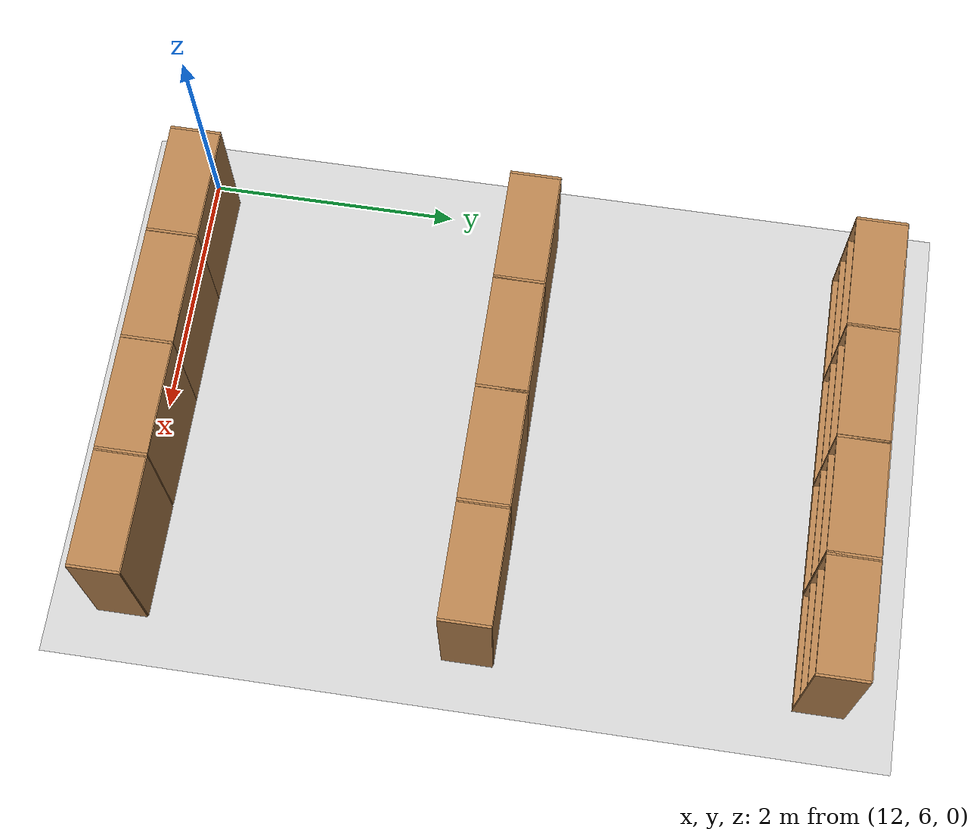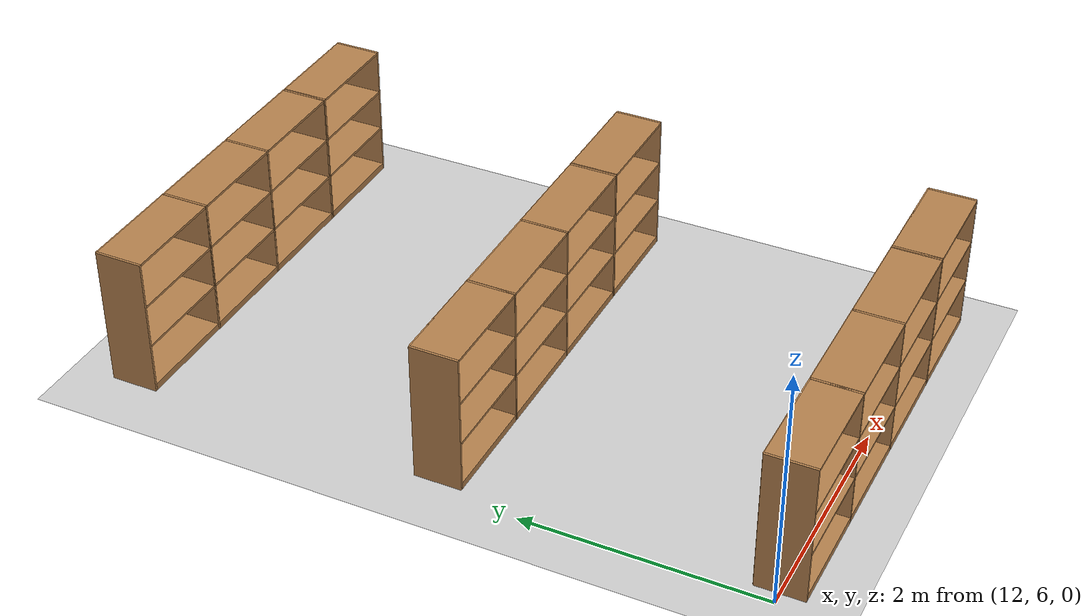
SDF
<sdf version="1.6">
 <world name="default">
  <model name="ground_plane">
   <static>1</static>
   <link name="link">
    <collision name="collision">
     <geometry><plane><normal>0 0 1</normal><size>100 100</size></plane></geometry>
     <surface><friction><ode><mu>100</mu><mu2>50</mu2></ode></friction></surface>
    </collision>
    <visual name="visual">
     <cast_shadows>0</cast_shadows>
     <geometry><plane><normal>0 0 1</normal><size>100 100</size></plane></geometry>
     <material>
      <script><uri>file://media/materials/scripts/gazebo.material</uri><name>Gazebo/Grey</name></script>
     </material>
    </visual>
   </link>
  </model>
  <model name="Bookself-4_clone_10">
   <model name="Bookself-3">
    <model name="bookshelf_0">
     <static>1</static>
     <link name="link">
      <inertial><mass>1</mass></inertial>
      <collision name="back">
       <pose>0 0.005 0.6 0 -0 0</pose>
       <geometry><box><size>0.9 0.01 1.2</size></box></geometry>
      </collision>
      <visual name="visual1">
       <pose>0 0.005 0.6 0 -0 0</pose>
       <geometry><box><size>0.9 0.01 1.2</size></box></geometry>
       <material>
        <script><uri>file://media/materials/scripts/gazebo.material</uri><name>Gazebo/Wood</name></script>
       </material>
      </visual>
      <collision name="left_side">
       <pose>0.45 -0.195 0.6 0 -0 0</pose>
       <geometry><box><size>0.02 0.4 1.2</size></box></geometry>
      </collision>
      <visual name="visual2">
       <pose>0.45 -0.195 0.6 0 -0 0</pose>
       <geometry><box><size>0.02 0.4 1.2</size></box></geometry>
       <material>
        <script><uri>file://media/materials/scripts/gazebo.material</uri><name>Gazebo/Wood</name></script>
       </material>
      </visual>
      <collision name="right_side">
       <pose>-0.45 -0.195 0.6 0 -0 0</pose>
       <geometry><box><size>0.02 0.4 1.2</size></box></geometry>
      </collision>
      <visual name="visual3">
       <pose>-0.45 -0.195 0.6 0 -0 0</pose>
       <geometry><box><size>0.02 0.4 1.2</size></box></geometry>
       <material>
        <script><uri>file://media/materials/scripts/gazebo.material</uri><name>Gazebo/Wood</name></script>
       </material>
      </visual>
      <collision name="bottom">
       <pose>0 -0.195 0.03 0 -0 0</pose>
       <geometry><box><size>0.88 0.4 0.06</size></box></geometry>
      </collision>
      <visual name="visual4">
       <pose>0 -0.195 0.03 0 -0 0</pose>
       <geometry><box><size>0.88 0.4 0.06</size></box></geometry>
       <material>
        <script><uri>file://media/materials/scripts/gazebo.material</uri><name>Gazebo/Wood</name></script>
       </material>
      </visual>
      <collision name="top">
       <pose>0 -0.195 1.19 0 -0 0</pose>
       <geometry><box><size>0.88 0.4 0.02</size></box></geometry>
      </collision>
      <visual name="visual5">
       <pose>0 -0.195 1.19 0 -0 0</pose>
       <geometry><box><size>0.88 0.4 0.02</size></box></geometry>
       <material>
        <script><uri>file://media/materials/scripts/gazebo.material</uri><name>Gazebo/Wood</name></script>
       </material>
      </visual>
      <collision name="low_shelf">
       <pose>0 -0.195 0.43 0 -0 0</pose>
       <geometry><box><size>0.88 0.4 0.02</size></box></geometry>
      </collision>
      <visual name="visual6">
       <pose>0 -0.195 0.43 0 -0 0</pose>
       <geometry><box><size>0.88 0.4 0.02</size></box></geometry>
       <material>
        <script><uri>file://media/materials/scripts/gazebo.material</uri><name>Gazebo/Wood</name></script>
       </material>
      </visual>
      <collision name="high_shelf">
       <pose>0 -0.195 0.8 0 -0 0</pose>
       <geometry><box><size>0.88 0.4 0.02</size></box></geometry>
      </collision>
      <visual name="visual7">
       <pose>0 -0.195 0.8 0 -0 0</pose>
       <geometry><box><size>0.88 0.4 0.02</size></box></geometry>
       <material>
        <script><uri>file://media/materials/scripts/gazebo.material</uri><name>Gazebo/Wood</name></script>
       </material>
      </visual>
     </link>
     <pose>-0.903039 0 0 0 -0 0</pose>
    </model>
    <model name="bookshelf_1">
     <static>1</static>
     <link name="link">
      <inertial><mass>1</mass></inertial>
      <collision name="back">
       <pose>0 0.005 0.6 0 -0 0</pose>
       <geometry><box><size>0.9 0.01 1.2</size></box></geometry>
      </collision>
      <visual name="visual1">
       <pose>0 0.005 0.6 0 -0 0</pose>
       <geometry><box><size>0.9 0.01 1.2</size></box></geometry>
       <material>
        <script><uri>file://media/materials/scripts/gazebo.material</uri><name>Gazebo/Wood</name></script>
       </material>
      </visual>
      <collision name="left_side">
       <pose>0.45 -0.195 0.6 0 -0 0</pose>
       <geometry><box><size>0.02 0.4 1.2</size></box></geometry>
      </collision>
      <visual name="visual2">
       <pose>0.45 -0.195 0.6 0 -0 0</pose>
       <geometry><box><size>0.02 0.4 1.2</size></box></geometry>
       <material>
        <script><uri>file://media/materials/scripts/gazebo.material</uri><name>Gazebo/Wood</name></script>
       </material>
      </visual>
      <collision name="right_side">
       <pose>-0.45 -0.195 0.6 0 -0 0</pose>
       <geometry><box><size>0.02 0.4 1.2</size></box></geometry>
      </collision>
      <visual name="visual3">
       <pose>-0.45 -0.195 0.6 0 -0 0</pose>
       <geometry><box><size>0.02 0.4 1.2</size></box></geometry>
       <material>
        <script><uri>file://media/materials/scripts/gazebo.material</uri><name>Gazebo/Wood</name></script>
       </material>
      </visual>
      <collision name="bottom">
       <pose>0 -0.195 0.03 0 -0 0</pose>
       <geometry><box><size>0.88 0.4 0.06</size></box></geometry>
      </collision>
      <visual name="visual4">
       <pose>0 -0.195 0.03 0 -0 0</pose>
       <geometry><box><size>0.88 0.4 0.06</size></box></geometry>
       <material>
        <script><uri>file://media/materials/scripts/gazebo.material</uri><name>Gazebo/Wood</name></script>
       </material>
      </visual>
      <collision name="top">
       <pose>0 -0.195 1.19 0 -0 0</pose>
       <geometry><box><size>0.88 0.4 0.02</size></box></geometry>
      </collision>
      <visual name="visual5">
       <pose>0 -0.195 1.19 0 -0 0</pose>
       <geometry><box><size>0.88 0.4 0.02</size></box></geometry>
       <material>
        <script><uri>file://media/materials/scripts/gazebo.material</uri><name>Gazebo/Wood</name></script>
       </material>
      </visual>
      <collision name="low_shelf">
       <pose>0 -0.195 0.43 0 -0 0</pose>
       <geometry><box><size>0.88 0.4 0.02</size></box></geometry>
      </collision>
      <visual name="visual6">
       <pose>0 -0.195 0.43 0 -0 0</pose>
       <geometry><box><size>0.88 0.4 0.02</size></box></geometry>
       <material>
        <script><uri>file://media/materials/scripts/gazebo.material</uri><name>Gazebo/Wood</name></script>
       </material>
      </visual>
      <collision name="high_shelf">
       <pose>0 -0.195 0.8 0 -0 0</pose>
       <geometry><box><size>0.88 0.4 0.02</size></box></geometry>
      </collision>
      <visual name="visual7">
       <pose>0 -0.195 0.8 0 -0 0</pose>
       <geometry><box><size>0.88 0.4 0.02</size></box></geometry>
       <material>
        <script><uri>file://media/materials/scripts/gazebo.material</uri><name>Gazebo/Wood</name></script>
       </material>
      </visual>
     </link>
     <pose>0.000535 0 0 0 -0 0</pose>
    </model>
    <model name="bookshelf_1_clone">
     <static>1</static>
     <link name="link">
      <inertial><mass>1</mass></inertial>
      <collision name="back">
       <pose>0 0.005 0.6 0 -0 0</pose>
       <geometry><box><size>0.9 0.01 1.2</size></box></geometry>
      </collision>
      <visual name="visual1">
       <pose>0 0.005 0.6 0 -0 0</pose>
       <geometry><box><size>0.9 0.01 1.2</size></box></geometry>
       <material>
        <script><uri>file://media/materials/scripts/gazebo.material</uri><name>Gazebo/Wood</name></script>
       </material>
      </visual>
      <collision name="left_side">
       <pose>0.45 -0.195 0.6 0 -0 0</pose>
       <geometry><box><size>0.02 0.4 1.2</size></box></geometry>
      </collision>
      <visual name="visual2">
       <pose>0.45 -0.195 0.6 0 -0 0</pose>
       <geometry><box><size>0.02 0.4 1.2</size></box></geometry>
       <material>
        <script><uri>file://media/materials/scripts/gazebo.material</uri><name>Gazebo/Wood</name></script>
       </material>
      </visual>
      <collision name="right_side">
       <pose>-0.45 -0.195 0.6 0 -0 0</pose>
       <geometry><box><size>0.02 0.4 1.2</size></box></geometry>
      </collision>
      <visual name="visual3">
       <pose>-0.45 -0.195 0.6 0 -0 0</pose>
       <geometry><box><size>0.02 0.4 1.2</size></box></geometry>
       <material>
        <script><uri>file://media/materials/scripts/gazebo.material</uri><name>Gazebo/Wood</name></script>
       </material>
      </visual>
      <collision name="bottom">
       <pose>0 -0.195 0.03 0 -0 0</pose>
       <geometry><box><size>0.88 0.4 0.06</size></box></geometry>
      </collision>
      <visual name="visual4">
       <pose>0 -0.195 0.03 0 -0 0</pose>
       <geometry><box><size>0.88 0.4 0.06</size></box></geometry>
       <material>
        <script><uri>file://media/materials/scripts/gazebo.material</uri><name>Gazebo/Wood</name></script>
       </material>
      </visual>
      <collision name="top">
       <pose>0 -0.195 1.19 0 -0 0</pose>
       <geometry><box><size>0.88 0.4 0.02</size></box></geometry>
      </collision>
      <visual name="visual5">
       <pose>0 -0.195 1.19 0 -0 0</pose>
       <geometry><box><size>0.88 0.4 0.02</size></box></geometry>
       <material>
        <script><uri>file://media/materials/scripts/gazebo.material</uri><name>Gazebo/Wood</name></script>
       </material>
      </visual>
      <collision name="low_shelf">
       <pose>0 -0.195 0.43 0 -0 0</pose>
       <geometry><box><size>0.88 0.4 0.02</size></box></geometry>
      </collision>
      <visual name="visual6">
       <pose>0 -0.195 0.43 0 -0 0</pose>
       <geometry><box><size>0.88 0.4 0.02</size></box></geometry>
       <material>
        <script><uri>file://media/materials/scripts/gazebo.material</uri><name>Gazebo/Wood</name></script>
       </material>
      </visual>
      <collision name="high_shelf">
       <pose>0 -0.195 0.8 0 -0 0</pose>
       <geometry><box><size>0.88 0.4 0.02</size></box></geometry>
      </collision>
      <visual name="visual7">
       <pose>0 -0.195 0.8 0 -0 0</pose>
       <geometry><box><size>0.88 0.4 0.02</size></box></geometry>
       <material>
        <script><uri>file://media/materials/scripts/gazebo.material</uri><name>Gazebo/Wood</name></script>
       </material>
      </visual>
     </link>
     <pose>0.902502 0 0 0 -0 0</pose>
    </model>
    <static>1</static>
    <pose>-0.906894 3e-05 0 0 -0 0</pose>
   </model>
   <model name="bookshelf">
    <static>1</static>
    <link name="link">
     <inertial><mass>1</mass></inertial>
     <collision name="back">
      <pose>0 0.005 0.6 0 -0 0</pose>
      <geometry><box><size>0.9 0.01 1.2</size></box></geometry>
     </collision>
     <visual name="visual1">
      <pose>0 0.005 0.6 0 -0 0</pose>
      <geometry><box><size>0.9 0.01 1.2</size></box></geometry>
      <material>
       <script><uri>file://media/materials/scripts/gazebo.material</uri><name>Gazebo/Wood</name></script>
      </material>
     </visual>
     <collision name="left_side">
      <pose>0.45 -0.195 0.6 0 -0 0</pose>
      <geometry><box><size>0.02 0.4 1.2</size></box></geometry>
     </collision>
     <visual name="visual2">
      <pose>0.45 -0.195 0.6 0 -0 0</pose>
      <geometry><box><size>0.02 0.4 1.2</size></box></geometry>
      <material>
       <script><uri>file://media/materials/scripts/gazebo.material</uri><name>Gazebo/Wood</name></script>
      </material>
     </visual>
     <collision name="right_side">
      <pose>-0.45 -0.195 0.6 0 -0 0</pose>
      <geometry><box><size>0.02 0.4 1.2</size></box></geometry>
     </collision>
     <visual name="visual3">
      <pose>-0.45 -0.195 0.6 0 -0 0</pose>
      <geometry><box><size>0.02 0.4 1.2</size></box></geometry>
      <material>
       <script><uri>file://media/materials/scripts/gazebo.material</uri><name>Gazebo/Wood</name></script>
      </material>
     </visual>
     <collision name="bottom">
      <pose>0 -0.195 0.03 0 -0 0</pose>
      <geometry><box><size>0.88 0.4 0.06</size></box></geometry>
     </collision>
     <visual name="visual4">
      <pose>0 -0.195 0.03 0 -0 0</pose>
      <geometry><box><size>0.88 0.4 0.06</size></box></geometry>
      <material>
       <script><uri>file://media/materials/scripts/gazebo.material</uri><name>Gazebo/Wood</name></script>
      </material>
     </visual>
     <collision name="top">
      <pose>0 -0.195 1.19 0 -0 0</pose>
      <geometry><box><size>0.88 0.4 0.02</size></box></geometry>
     </collision>
     <visual name="visual5">
      <pose>0 -0.195 1.19 0 -0 0</pose>
      <geometry><box><size>0.88 0.4 0.02</size></box></geometry>
      <material>
       <script><uri>file://media/materials/scripts/gazebo.material</uri><name>Gazebo/Wood</name></script>
      </material>
     </visual>
     <collision name="low_shelf">
      <pose>0 -0.195 0.43 0 -0 0</pose>
      <geometry><box><size>0.88 0.4 0.02</size></box></geometry>
     </collision>
     <visual name="visual6">
      <pose>0 -0.195 0.43 0 -0 0</pose>
      <geometry><box><size>0.88 0.4 0.02</size></box></geometry>
      <material>
       <script><uri>file://media/materials/scripts/gazebo.material</uri><name>Gazebo/Wood</name></script>
      </material>
     </visual>
     <collision name="high_shelf">
      <pose>0 -0.195 0.8 0 -0 0</pose>
      <geometry><box><size>0.88 0.4 0.02</size></box></geometry>
     </collision>
     <visual name="visual7">
      <pose>0 -0.195 0.8 0 -0 0</pose>
      <geometry><box><size>0.88 0.4 0.02</size></box></geometry>
      <material>
       <script><uri>file://media/materials/scripts/gazebo.material</uri><name>Gazebo/Wood</name></script>
      </material>
     </visual>
    </link>
    <pose>0.906808 3e-05 0 0 -0 0</pose>
   </model>
   <static>0</static>
   <pose>14.3718 11.6044 0 0 -0 0</pose>
  </model>
  <model name="Bookself-4_clone_11">
   <model name="Bookself-3">
    <model name="bookshelf_0">
     <static>1</static>
     <link name="link">
      <inertial><mass>1</mass></inertial>
      <collision name="back">
       <pose>0 0.005 0.6 0 -0 0</pose>
       <geometry><box><size>0.9 0.01 1.2</size></box></geometry>
      </collision>
      <visual name="visual1">
       <pose>0 0.005 0.6 0 -0 0</pose>
       <geometry><box><size>0.9 0.01 1.2</size></box></geometry>
       <material>
        <script><uri>file://media/materials/scripts/gazebo.material</uri><name>Gazebo/Wood</name></script>
       </material>
      </visual>
      <collision name="left_side">
       <pose>0.45 -0.195 0.6 0 -0 0</pose>
       <geometry><box><size>0.02 0.4 1.2</size></box></geometry>
      </collision>
      <visual name="visual2">
       <pose>0.45 -0.195 0.6 0 -0 0</pose>
       <geometry><box><size>0.02 0.4 1.2</size></box></geometry>
       <material>
        <script><uri>file://media/materials/scripts/gazebo.material</uri><name>Gazebo/Wood</name></script>
       </material>
      </visual>
      <collision name="right_side">
       <pose>-0.45 -0.195 0.6 0 -0 0</pose>
       <geometry><box><size>0.02 0.4 1.2</size></box></geometry>
      </collision>
      <visual name="visual3">
       <pose>-0.45 -0.195 0.6 0 -0 0</pose>
       <geometry><box><size>0.02 0.4 1.2</size></box></geometry>
       <material>
        <script><uri>file://media/materials/scripts/gazebo.material</uri><name>Gazebo/Wood</name></script>
       </material>
      </visual>
      <collision name="bottom">
       <pose>0 -0.195 0.03 0 -0 0</pose>
       <geometry><box><size>0.88 0.4 0.06</size></box></geometry>
      </collision>
      <visual name="visual4">
       <pose>0 -0.195 0.03 0 -0 0</pose>
       <geometry><box><size>0.88 0.4 0.06</size></box></geometry>
       <material>
        <script><uri>file://media/materials/scripts/gazebo.material</uri><name>Gazebo/Wood</name></script>
       </material>
      </visual>
      <collision name="top">
       <pose>0 -0.195 1.19 0 -0 0</pose>
       <geometry><box><size>0.88 0.4 0.02</size></box></geometry>
      </collision>
      <visual name="visual5">
       <pose>0 -0.195 1.19 0 -0 0</pose>
       <geometry><box><size>0.88 0.4 0.02</size></box></geometry>
       <material>
        <script><uri>file://media/materials/scripts/gazebo.material</uri><name>Gazebo/Wood</name></script>
       </material>
      </visual>
      <collision name="low_shelf">
       <pose>0 -0.195 0.43 0 -0 0</pose>
       <geometry><box><size>0.88 0.4 0.02</size></box></geometry>
      </collision>
      <visual name="visual6">
       <pose>0 -0.195 0.43 0 -0 0</pose>
       <geometry><box><size>0.88 0.4 0.02</size></box></geometry>
       <material>
        <script><uri>file://media/materials/scripts/gazebo.material</uri><name>Gazebo/Wood</name></script>
       </material>
      </visual>
      <collision name="high_shelf">
       <pose>0 -0.195 0.8 0 -0 0</pose>
       <geometry><box><size>0.88 0.4 0.02</size></box></geometry>
      </collision>
      <visual name="visual7">
       <pose>0 -0.195 0.8 0 -0 0</pose>
       <geometry><box><size>0.88 0.4 0.02</size></box></geometry>
       <material>
        <script><uri>file://media/materials/scripts/gazebo.material</uri><name>Gazebo/Wood</name></script>
       </material>
      </visual>
     </link>
     <pose>-0.903039 0 0 0 -0 0</pose>
    </model>
    <model name="bookshelf_1">
     <static>1</static>
     <link name="link">
      <inertial><mass>1</mass></inertial>
      <collision name="back">
       <pose>0 0.005 0.6 0 -0 0</pose>
       <geometry><box><size>0.9 0.01 1.2</size></box></geometry>
      </collision>
      <visual name="visual1">
       <pose>0 0.005 0.6 0 -0 0</pose>
       <geometry><box><size>0.9 0.01 1.2</size></box></geometry>
       <material>
        <script><uri>file://media/materials/scripts/gazebo.material</uri><name>Gazebo/Wood</name></script>
       </material>
      </visual>
      <collision name="left_side">
       <pose>0.45 -0.195 0.6 0 -0 0</pose>
       <geometry><box><size>0.02 0.4 1.2</size></box></geometry>
      </collision>
      <visual name="visual2">
       <pose>0.45 -0.195 0.6 0 -0 0</pose>
       <geometry><box><size>0.02 0.4 1.2</size></box></geometry>
       <material>
        <script><uri>file://media/materials/scripts/gazebo.material</uri><name>Gazebo/Wood</name></script>
       </material>
      </visual>
      <collision name="right_side">
       <pose>-0.45 -0.195 0.6 0 -0 0</pose>
       <geometry><box><size>0.02 0.4 1.2</size></box></geometry>
      </collision>
      <visual name="visual3">
       <pose>-0.45 -0.195 0.6 0 -0 0</pose>
       <geometry><box><size>0.02 0.4 1.2</size></box></geometry>
       <material>
        <script><uri>file://media/materials/scripts/gazebo.material</uri><name>Gazebo/Wood</name></script>
       </material>
      </visual>
      <collision name="bottom">
       <pose>0 -0.195 0.03 0 -0 0</pose>
       <geometry><box><size>0.88 0.4 0.06</size></box></geometry>
      </collision>
      <visual name="visual4">
       <pose>0 -0.195 0.03 0 -0 0</pose>
       <geometry><box><size>0.88 0.4 0.06</size></box></geometry>
       <material>
        <script><uri>file://media/materials/scripts/gazebo.material</uri><name>Gazebo/Wood</name></script>
       </material>
      </visual>
      <collision name="top">
       <pose>0 -0.195 1.19 0 -0 0</pose>
       <geometry><box><size>0.88 0.4 0.02</size></box></geometry>
      </collision>
      <visual name="visual5">
       <pose>0 -0.195 1.19 0 -0 0</pose>
       <geometry><box><size>0.88 0.4 0.02</size></box></geometry>
       <material>
        <script><uri>file://media/materials/scripts/gazebo.material</uri><name>Gazebo/Wood</name></script>
       </material>
      </visual>
      <collision name="low_shelf">
       <pose>0 -0.195 0.43 0 -0 0</pose>
       <geometry><box><size>0.88 0.4 0.02</size></box></geometry>
      </collision>
      <visual name="visual6">
       <pose>0 -0.195 0.43 0 -0 0</pose>
       <geometry><box><size>0.88 0.4 0.02</size></box></geometry>
       <material>
        <script><uri>file://media/materials/scripts/gazebo.material</uri><name>Gazebo/Wood</name></script>
       </material>
      </visual>
      <collision name="high_shelf">
       <pose>0 -0.195 0.8 0 -0 0</pose>
       <geometry><box><size>0.88 0.4 0.02</size></box></geometry>
      </collision>
      <visual name="visual7">
       <pose>0 -0.195 0.8 0 -0 0</pose>
       <geometry><box><size>0.88 0.4 0.02</size></box></geometry>
       <material>
        <script><uri>file://media/materials/scripts/gazebo.material</uri><name>Gazebo/Wood</name></script>
       </material>
      </visual>
     </link>
     <pose>0.000535 0 0 0 -0 0</pose>
    </model>
    <model name="bookshelf_1_clone">
     <static>1</static>
     <link name="link">
      <inertial><mass>1</mass></inertial>
      <collision name="back">
       <pose>0 0.005 0.6 0 -0 0</pose>
       <geometry><box><size>0.9 0.01 1.2</size></box></geometry>
      </collision>
      <visual name="visual1">
       <pose>0 0.005 0.6 0 -0 0</pose>
       <geometry><box><size>0.9 0.01 1.2</size></box></geometry>
       <material>
        <script><uri>file://media/materials/scripts/gazebo.material</uri><name>Gazebo/Wood</name></script>
       </material>
      </visual>
      <collision name="left_side">
       <pose>0.45 -0.195 0.6 0 -0 0</pose>
       <geometry><box><size>0.02 0.4 1.2</size></box></geometry>
      </collision>
      <visual name="visual2">
       <pose>0.45 -0.195 0.6 0 -0 0</pose>
       <geometry><box><size>0.02 0.4 1.2</size></box></geometry>
       <material>
        <script><uri>file://media/materials/scripts/gazebo.material</uri><name>Gazebo/Wood</name></script>
       </material>
      </visual>
      <collision name="right_side">
       <pose>-0.45 -0.195 0.6 0 -0 0</pose>
       <geometry><box><size>0.02 0.4 1.2</size></box></geometry>
      </collision>
      <visual name="visual3">
       <pose>-0.45 -0.195 0.6 0 -0 0</pose>
       <geometry><box><size>0.02 0.4 1.2</size></box></geometry>
       <material>
        <script><uri>file://media/materials/scripts/gazebo.material</uri><name>Gazebo/Wood</name></script>
       </material>
      </visual>
      <collision name="bottom">
       <pose>0 -0.195 0.03 0 -0 0</pose>
       <geometry><box><size>0.88 0.4 0.06</size></box></geometry>
      </collision>
      <visual name="visual4">
       <pose>0 -0.195 0.03 0 -0 0</pose>
       <geometry><box><size>0.88 0.4 0.06</size></box></geometry>
       <material>
        <script><uri>file://media/materials/scripts/gazebo.material</uri><name>Gazebo/Wood</name></script>
       </material>
      </visual>
      <collision name="top">
       <pose>0 -0.195 1.19 0 -0 0</pose>
       <geometry><box><size>0.88 0.4 0.02</size></box></geometry>
      </collision>
      <visual name="visual5">
       <pose>0 -0.195 1.19 0 -0 0</pose>
       <geometry><box><size>0.88 0.4 0.02</size></box></geometry>
       <material>
        <script><uri>file://media/materials/scripts/gazebo.material</uri><name>Gazebo/Wood</name></script>
       </material>
      </visual>
      <collision name="low_shelf">
       <pose>0 -0.195 0.43 0 -0 0</pose>
       <geometry><box><size>0.88 0.4 0.02</size></box></geometry>
      </collision>
      <visual name="visual6">
       <pose>0 -0.195 0.43 0 -0 0</pose>
       <geometry><box><size>0.88 0.4 0.02</size></box></geometry>
       <material>
        <script><uri>file://media/materials/scripts/gazebo.material</uri><name>Gazebo/Wood</name></script>
       </material>
      </visual>
      <collision name="high_shelf">
       <pose>0 -0.195 0.8 0 -0 0</pose>
       <geometry><box><size>0.88 0.4 0.02</size></box></geometry>
      </collision>
      <visual name="visual7">
       <pose>0 -0.195 0.8 0 -0 0</pose>
       <geometry><box><size>0.88 0.4 0.02</size></box></geometry>
       <material>
        <script><uri>file://media/materials/scripts/gazebo.material</uri><name>Gazebo/Wood</name></script>
       </material>
      </visual>
     </link>
     <pose>0.902502 0 0 0 -0 0</pose>
    </model>
    <static>1</static>
    <pose>-0.906894 3e-05 0 0 -0 0</pose>
   </model>
   <model name="bookshelf">
    <static>1</static>
    <link name="link">
     <inertial><mass>1</mass></inertial>
     <collision name="back">
      <pose>0 0.005 0.6 0 -0 0</pose>
      <geometry><box><size>0.9 0.01 1.2</size></box></geometry>
     </collision>
     <visual name="visual1">
      <pose>0 0.005 0.6 0 -0 0</pose>
      <geometry><box><size>0.9 0.01 1.2</size></box></geometry>
      <material>
       <script><uri>file://media/materials/scripts/gazebo.material</uri><name>Gazebo/Wood</name></script>
      </material>
     </visual>
     <collision name="left_side">
      <pose>0.45 -0.195 0.6 0 -0 0</pose>
      <geometry><box><size>0.02 0.4 1.2</size></box></geometry>
     </collision>
     <visual name="visual2">
      <pose>0.45 -0.195 0.6 0 -0 0</pose>
      <geometry><box><size>0.02 0.4 1.2</size></box></geometry>
      <material>
       <script><uri>file://media/materials/scripts/gazebo.material</uri><name>Gazebo/Wood</name></script>
      </material>
     </visual>
     <collision name="right_side">
      <pose>-0.45 -0.195 0.6 0 -0 0</pose>
      <geometry><box><size>0.02 0.4 1.2</size></box></geometry>
     </collision>
     <visual name="visual3">
      <pose>-0.45 -0.195 0.6 0 -0 0</pose>
      <geometry><box><size>0.02 0.4 1.2</size></box></geometry>
      <material>
       <script><uri>file://media/materials/scripts/gazebo.material</uri><name>Gazebo/Wood</name></script>
      </material>
     </visual>
     <collision name="bottom">
      <pose>0 -0.195 0.03 0 -0 0</pose>
      <geometry><box><size>0.88 0.4 0.06</size></box></geometry>
     </collision>
     <visual name="visual4">
      <pose>0 -0.195 0.03 0 -0 0</pose>
      <geometry><box><size>0.88 0.4 0.06</size></box></geometry>
      <material>
       <script><uri>file://media/materials/scripts/gazebo.material</uri><name>Gazebo/Wood</name></script>
      </material>
     </visual>
     <collision name="top">
      <pose>0 -0.195 1.19 0 -0 0</pose>
      <geometry><box><size>0.88 0.4 0.02</size></box></geometry>
     </collision>
     <visual name="visual5">
      <pose>0 -0.195 1.19 0 -0 0</pose>
      <geometry><box><size>0.88 0.4 0.02</size></box></geometry>
      <material>
       <script><uri>file://media/materials/scripts/gazebo.material</uri><name>Gazebo/Wood</name></script>
      </material>
     </visual>
     <collision name="low_shelf">
      <pose>0 -0.195 0.43 0 -0 0</pose>
      <geometry><box><size>0.88 0.4 0.02</size></box></geometry>
     </collision>
     <visual name="visual6">
      <pose>0 -0.195 0.43 0 -0 0</pose>
      <geometry><box><size>0.88 0.4 0.02</size></box></geometry>
      <material>
       <script><uri>file://media/materials/scripts/gazebo.material</uri><name>Gazebo/Wood</name></script>
      </material>
     </visual>
     <collision name="high_shelf">
      <pose>0 -0.195 0.8 0 -0 0</pose>
      <geometry><box><size>0.88 0.4 0.02</size></box></geometry>
     </collision>
     <visual name="visual7">
      <pose>0 -0.195 0.8 0 -0 0</pose>
      <geometry><box><size>0.88 0.4 0.02</size></box></geometry>
      <material>
       <script><uri>file://media/materials/scripts/gazebo.material</uri><name>Gazebo/Wood</name></script>
      </material>
     </visual>
    </link>
    <pose>0.906808 3e-05 0 0 -0 0</pose>
   </model>
   <static>0</static>
   <pose>14.3718 8.89985 0 0 -0 0</pose>
  </model>
  <model name="Bookself-4_clone_12">
   <model name="Bookself-3">
    <model name="bookshelf_0">
     <static>1</static>
     <link name="link">
      <inertial><mass>1</mass></inertial>
      <collision name="back">
       <pose>0 0.005 0.6 0 -0 0</pose>
       <geometry><box><size>0.9 0.01 1.2</size></box></geometry>
      </collision>
      <visual name="visual1">
       <pose>0 0.005 0.6 0 -0 0</pose>
       <geometry><box><size>0.9 0.01 1.2</size></box></geometry>
       <material>
        <script><uri>file://media/materials/scripts/gazebo.material</uri><name>Gazebo/Wood</name></script>
       </material>
      </visual>
      <collision name="left_side">
       <pose>0.45 -0.195 0.6 0 -0 0</pose>
       <geometry><box><size>0.02 0.4 1.2</size></box></geometry>
      </collision>
      <visual name="visual2">
       <pose>0.45 -0.195 0.6 0 -0 0</pose>
       <geometry><box><size>0.02 0.4 1.2</size></box></geometry>
       <material>
        <script><uri>file://media/materials/scripts/gazebo.material</uri><name>Gazebo/Wood</name></script>
       </material>
      </visual>
      <collision name="right_side">
       <pose>-0.45 -0.195 0.6 0 -0 0</pose>
       <geometry><box><size>0.02 0.4 1.2</size></box></geometry>
      </collision>
      <visual name="visual3">
       <pose>-0.45 -0.195 0.6 0 -0 0</pose>
       <geometry><box><size>0.02 0.4 1.2</size></box></geometry>
       <material>
        <script><uri>file://media/materials/scripts/gazebo.material</uri><name>Gazebo/Wood</name></script>
       </material>
      </visual>
      <collision name="bottom">
       <pose>0 -0.195 0.03 0 -0 0</pose>
       <geometry><box><size>0.88 0.4 0.06</size></box></geometry>
      </collision>
      <visual name="visual4">
       <pose>0 -0.195 0.03 0 -0 0</pose>
       <geometry><box><size>0.88 0.4 0.06</size></box></geometry>
       <material>
        <script><uri>file://media/materials/scripts/gazebo.material</uri><name>Gazebo/Wood</name></script>
       </material>
      </visual>
      <collision name="top">
       <pose>0 -0.195 1.19 0 -0 0</pose>
       <geometry><box><size>0.88 0.4 0.02</size></box></geometry>
      </collision>
      <visual name="visual5">
       <pose>0 -0.195 1.19 0 -0 0</pose>
       <geometry><box><size>0.88 0.4 0.02</size></box></geometry>
       <material>
        <script><uri>file://media/materials/scripts/gazebo.material</uri><name>Gazebo/Wood</name></script>
       </material>
      </visual>
      <collision name="low_shelf">
       <pose>0 -0.195 0.43 0 -0 0</pose>
       <geometry><box><size>0.88 0.4 0.02</size></box></geometry>
      </collision>
      <visual name="visual6">
       <pose>0 -0.195 0.43 0 -0 0</pose>
       <geometry><box><size>0.88 0.4 0.02</size></box></geometry>
       <material>
        <script><uri>file://media/materials/scripts/gazebo.material</uri><name>Gazebo/Wood</name></script>
       </material>
      </visual>
      <collision name="high_shelf">
       <pose>0 -0.195 0.8 0 -0 0</pose>
       <geometry><box><size>0.88 0.4 0.02</size></box></geometry>
      </collision>
      <visual name="visual7">
       <pose>0 -0.195 0.8 0 -0 0</pose>
       <geometry><box><size>0.88 0.4 0.02</size></box></geometry>
       <material>
        <script><uri>file://media/materials/scripts/gazebo.material</uri><name>Gazebo/Wood</name></script>
       </material>
      </visual>
     </link>
     <pose>-0.903039 0 0 0 -0 0</pose>
    </model>
    <model name="bookshelf_1">
     <static>1</static>
     <link name="link">
      <inertial><mass>1</mass></inertial>
      <collision name="back">
       <pose>0 0.005 0.6 0 -0 0</pose>
       <geometry><box><size>0.9 0.01 1.2</size></box></geometry>
      </collision>
      <visual name="visual1">
       <pose>0 0.005 0.6 0 -0 0</pose>
       <geometry><box><size>0.9 0.01 1.2</size></box></geometry>
       <material>
        <script><uri>file://media/materials/scripts/gazebo.material</uri><name>Gazebo/Wood</name></script>
       </material>
      </visual>
      <collision name="left_side">
       <pose>0.45 -0.195 0.6 0 -0 0</pose>
       <geometry><box><size>0.02 0.4 1.2</size></box></geometry>
      </collision>
      <visual name="visual2">
       <pose>0.45 -0.195 0.6 0 -0 0</pose>
       <geometry><box><size>0.02 0.4 1.2</size></box></geometry>
       <material>
        <script><uri>file://media/materials/scripts/gazebo.material</uri><name>Gazebo/Wood</name></script>
       </material>
      </visual>
      <collision name="right_side">
       <pose>-0.45 -0.195 0.6 0 -0 0</pose>
       <geometry><box><size>0.02 0.4 1.2</size></box></geometry>
      </collision>
      <visual name="visual3">
       <pose>-0.45 -0.195 0.6 0 -0 0</pose>
       <geometry><box><size>0.02 0.4 1.2</size></box></geometry>
       <material>
        <script><uri>file://media/materials/scripts/gazebo.material</uri><name>Gazebo/Wood</name></script>
       </material>
      </visual>
      <collision name="bottom">
       <pose>0 -0.195 0.03 0 -0 0</pose>
       <geometry><box><size>0.88 0.4 0.06</size></box></geometry>
      </collision>
      <visual name="visual4">
       <pose>0 -0.195 0.03 0 -0 0</pose>
       <geometry><box><size>0.88 0.4 0.06</size></box></geometry>
       <material>
        <script><uri>file://media/materials/scripts/gazebo.material</uri><name>Gazebo/Wood</name></script>
       </material>
      </visual>
      <collision name="top">
       <pose>0 -0.195 1.19 0 -0 0</pose>
       <geometry><box><size>0.88 0.4 0.02</size></box></geometry>
      </collision>
      <visual name="visual5">
       <pose>0 -0.195 1.19 0 -0 0</pose>
       <geometry><box><size>0.88 0.4 0.02</size></box></geometry>
       <material>
        <script><uri>file://media/materials/scripts/gazebo.material</uri><name>Gazebo/Wood</name></script>
       </material>
      </visual>
      <collision name="low_shelf">
       <pose>0 -0.195 0.43 0 -0 0</pose>
       <geometry><box><size>0.88 0.4 0.02</size></box></geometry>
      </collision>
      <visual name="visual6">
       <pose>0 -0.195 0.43 0 -0 0</pose>
       <geometry><box><size>0.88 0.4 0.02</size></box></geometry>
       <material>
        <script><uri>file://media/materials/scripts/gazebo.material</uri><name>Gazebo/Wood</name></script>
       </material>
      </visual>
      <collision name="high_shelf">
       <pose>0 -0.195 0.8 0 -0 0</pose>
       <geometry><box><size>0.88 0.4 0.02</size></box></geometry>
      </collision>
      <visual name="visual7">
       <pose>0 -0.195 0.8 0 -0 0</pose>
       <geometry><box><size>0.88 0.4 0.02</size></box></geometry>
       <material>
        <script><uri>file://media/materials/scripts/gazebo.material</uri><name>Gazebo/Wood</name></script>
       </material>
      </visual>
     </link>
     <pose>0.000535 0 0 0 -0 0</pose>
    </model>
    <model name="bookshelf_1_clone">
     <static>1</static>
     <link name="link">
      <inertial><mass>1</mass></inertial>
      <collision name="back">
       <pose>0 0.005 0.6 0 -0 0</pose>
       <geometry><box><size>0.9 0.01 1.2</size></box></geometry>
      </collision>
      <visual name="visual1">
       <pose>0 0.005 0.6 0 -0 0</pose>
       <geometry><box><size>0.9 0.01 1.2</size></box></geometry>
       <material>
        <script><uri>file://media/materials/scripts/gazebo.material</uri><name>Gazebo/Wood</name></script>
       </material>
      </visual>
      <collision name="left_side">
       <pose>0.45 -0.195 0.6 0 -0 0</pose>
       <geometry><box><size>0.02 0.4 1.2</size></box></geometry>
      </collision>
      <visual name="visual2">
       <pose>0.45 -0.195 0.6 0 -0 0</pose>
       <geometry><box><size>0.02 0.4 1.2</size></box></geometry>
       <material>
        <script><uri>file://media/materials/scripts/gazebo.material</uri><name>Gazebo/Wood</name></script>
       </material>
      </visual>
      <collision name="right_side">
       <pose>-0.45 -0.195 0.6 0 -0 0</pose>
       <geometry><box><size>0.02 0.4 1.2</size></box></geometry>
      </collision>
      <visual name="visual3">
       <pose>-0.45 -0.195 0.6 0 -0 0</pose>
       <geometry><box><size>0.02 0.4 1.2</size></box></geometry>
       <material>
        <script><uri>file://media/materials/scripts/gazebo.material</uri><name>Gazebo/Wood</name></script>
       </material>
      </visual>
      <collision name="bottom">
       <pose>0 -0.195 0.03 0 -0 0</pose>
       <geometry><box><size>0.88 0.4 0.06</size></box></geometry>
      </collision>
      <visual name="visual4">
       <pose>0 -0.195 0.03 0 -0 0</pose>
       <geometry><box><size>0.88 0.4 0.06</size></box></geometry>
       <material>
        <script><uri>file://media/materials/scripts/gazebo.material</uri><name>Gazebo/Wood</name></script>
       </material>
      </visual>
      <collision name="top">
       <pose>0 -0.195 1.19 0 -0 0</pose>
       <geometry><box><size>0.88 0.4 0.02</size></box></geometry>
      </collision>
      <visual name="visual5">
       <pose>0 -0.195 1.19 0 -0 0</pose>
       <geometry><box><size>0.88 0.4 0.02</size></box></geometry>
       <material>
        <script><uri>file://media/materials/scripts/gazebo.material</uri><name>Gazebo/Wood</name></script>
       </material>
      </visual>
      <collision name="low_shelf">
       <pose>0 -0.195 0.43 0 -0 0</pose>
       <geometry><box><size>0.88 0.4 0.02</size></box></geometry>
      </collision>
      <visual name="visual6">
       <pose>0 -0.195 0.43 0 -0 0</pose>
       <geometry><box><size>0.88 0.4 0.02</size></box></geometry>
       <material>
        <script><uri>file://media/materials/scripts/gazebo.material</uri><name>Gazebo/Wood</name></script>
       </material>
      </visual>
      <collision name="high_shelf">
       <pose>0 -0.195 0.8 0 -0 0</pose>
       <geometry><box><size>0.88 0.4 0.02</size></box></geometry>
      </collision>
      <visual name="visual7">
       <pose>0 -0.195 0.8 0 -0 0</pose>
       <geometry><box><size>0.88 0.4 0.02</size></box></geometry>
       <material>
        <script><uri>file://media/materials/scripts/gazebo.material</uri><name>Gazebo/Wood</name></script>
       </material>
      </visual>
     </link>
     <pose>0.902502 0 0 0 -0 0</pose>
    </model>
    <static>1</static>
    <pose>-0.906894 3e-05 0 0 -0 0</pose>
   </model>
   <model name="bookshelf">
    <static>1</static>
    <link name="link">
     <inertial><mass>1</mass></inertial>
     <collision name="back">
      <pose>0 0.005 0.6 0 -0 0</pose>
      <geometry><box><size>0.9 0.01 1.2</size></box></geometry>
     </collision>
     <visual name="visual1">
      <pose>0 0.005 0.6 0 -0 0</pose>
      <geometry><box><size>0.9 0.01 1.2</size></box></geometry>
      <material>
       <script><uri>file://media/materials/scripts/gazebo.material</uri><name>Gazebo/Wood</name></script>
      </material>
     </visual>
     <collision name="left_side">
      <pose>0.45 -0.195 0.6 0 -0 0</pose>
      <geometry><box><size>0.02 0.4 1.2</size></box></geometry>
     </collision>
     <visual name="visual2">
      <pose>0.45 -0.195 0.6 0 -0 0</pose>
      <geometry><box><size>0.02 0.4 1.2</size></box></geometry>
      <material>
       <script><uri>file://media/materials/scripts/gazebo.material</uri><name>Gazebo/Wood</name></script>
      </material>
     </visual>
     <collision name="right_side">
      <pose>-0.45 -0.195 0.6 0 -0 0</pose>
      <geometry><box><size>0.02 0.4 1.2</size></box></geometry>
     </collision>
     <visual name="visual3">
      <pose>-0.45 -0.195 0.6 0 -0 0</pose>
      <geometry><box><size>0.02 0.4 1.2</size></box></geometry>
      <material>
       <script><uri>file://media/materials/scripts/gazebo.material</uri><name>Gazebo/Wood</name></script>
      </material>
     </visual>
     <collision name="bottom">
      <pose>0 -0.195 0.03 0 -0 0</pose>
      <geometry><box><size>0.88 0.4 0.06</size></box></geometry>
     </collision>
     <visual name="visual4">
      <pose>0 -0.195 0.03 0 -0 0</pose>
      <geometry><box><size>0.88 0.4 0.06</size></box></geometry>
      <material>
       <script><uri>file://media/materials/scripts/gazebo.material</uri><name>Gazebo/Wood</name></script>
      </material>
     </visual>
     <collision name="top">
      <pose>0 -0.195 1.19 0 -0 0</pose>
      <geometry><box><size>0.88 0.4 0.02</size></box></geometry>
     </collision>
     <visual name="visual5">
      <pose>0 -0.195 1.19 0 -0 0</pose>
      <geometry><box><size>0.88 0.4 0.02</size></box></geometry>
      <material>
       <script><uri>file://media/materials/scripts/gazebo.material</uri><name>Gazebo/Wood</name></script>
      </material>
     </visual>
     <collision name="low_shelf">
      <pose>0 -0.195 0.43 0 -0 0</pose>
      <geometry><box><size>0.88 0.4 0.02</size></box></geometry>
     </collision>
     <visual name="visual6">
      <pose>0 -0.195 0.43 0 -0 0</pose>
      <geometry><box><size>0.88 0.4 0.02</size></box></geometry>
      <material>
       <script><uri>file://media/materials/scripts/gazebo.material</uri><name>Gazebo/Wood</name></script>
      </material>
     </visual>
     <collision name="high_shelf">
      <pose>0 -0.195 0.8 0 -0 0</pose>
      <geometry><box><size>0.88 0.4 0.02</size></box></geometry>
     </collision>
     <visual name="visual7">
      <pose>0 -0.195 0.8 0 -0 0</pose>
      <geometry><box><size>0.88 0.4 0.02</size></box></geometry>
      <material>
       <script><uri>file://media/materials/scripts/gazebo.material</uri><name>Gazebo/Wood</name></script>
      </material>
     </visual>
    </link>
    <pose>0.906808 3e-05 0 0 -0 0</pose>
   </model>
   <static>0</static>
   <pose>14.3718 6.1953 0 0 -0 0</pose>
  </model>
 </world>
</sdf>
